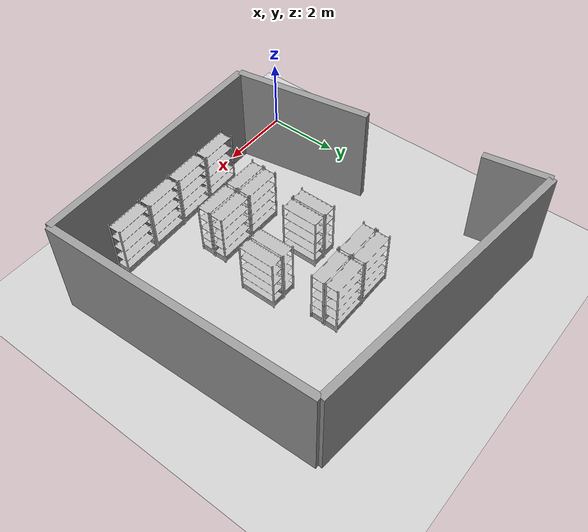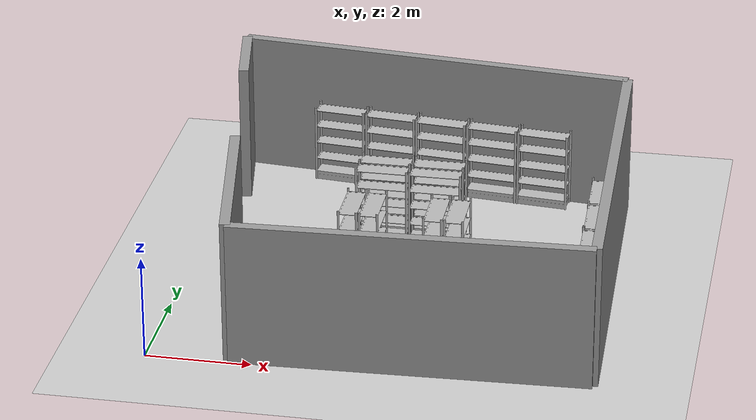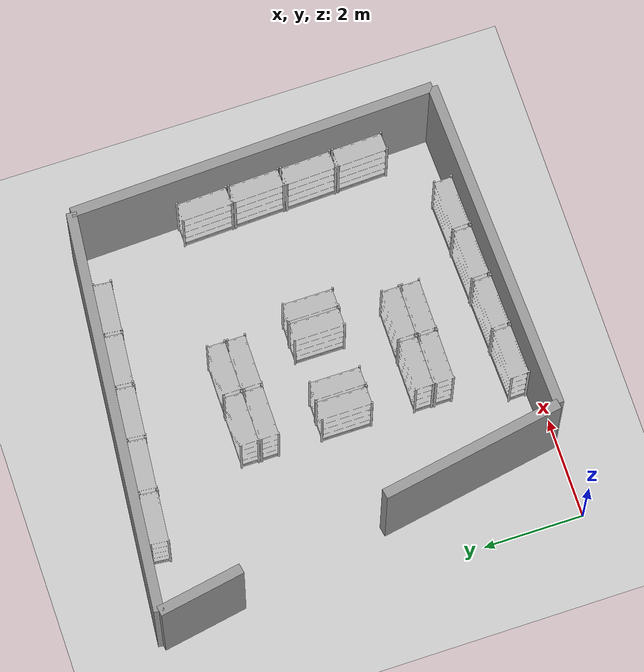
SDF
<sdf version="1.6">
  <world name="default">
    <light name="sun" type="directional">
      <cast_shadows>1</cast_shadows>
      <pose frame="">0 0 10 0 -0 0</pose>
      <diffuse>0.8 0.8 0.8 1</diffuse>
      <specular>0.2 0.2 0.2 1</specular>
      <attenuation>
        <range>1000</range>
        <constant>0.9</constant>
        <linear>0.01</linear>
        <quadratic>0.001</quadratic>
      </attenuation>
      <direction>-0.5 0.1 -0.9</direction>
    </light>
    <model name="ground_plane">
      <static>1</static>
      <link name="link">
        <collision name="collision">
          <geometry>
            <plane>
              <normal>0 0 1</normal>
              <size>100 100</size>
            </plane>
          </geometry>
          <surface>
            <contact>
              <collide_bitmask>65535</collide_bitmask>
              <ode />
            </contact>
            <friction>
              <ode>
                <mu>1000</mu>
                <mu2>1000</mu2>
              </ode>
              <torsional>
                <ode />
              </torsional>
            </friction>
            <bounce />
          </surface>
          <max_contacts>10</max_contacts>
        </collision>
        <visual name="visual">
          <cast_shadows>0</cast_shadows>
          <geometry>
            <plane>
              <normal>0 0 1</normal>
              <size>100 100</size>
            </plane>
          </geometry>
          <material>
            <script>
              <uri>file://media/materials/scripts/gazebo.material</uri>
              <name>Gazebo/Grey</name>
            </script>
          </material>
        </visual>
        <self_collide>0</self_collide>
        <enable_wind>0</enable_wind>
        <kinematic>0</kinematic>
      </link>
    </model>
    <gravity>0 0 -9.8</gravity>
    <magnetic_field>6e-06 2.3e-05 -4.2e-05</magnetic_field>
    <atmosphere type="adiabatic" />
    <physics name="default_physics" default="0" type="ode">
      <max_step_size>0.001</max_step_size>
      <real_time_factor>1</real_time_factor>
      <real_time_update_rate>1000</real_time_update_rate>
    </physics>
    <scene>
      <ambient>0.4 0.4 0.4 1</ambient>
      <background>0.7 0.7 0.7 1</background>
      <shadows>1</shadows>
    </scene>
    <audio>
      <device>default</device>
    </audio>
    <wind />
    <spherical_coordinates>
      <surface_model>EARTH_WGS84</surface_model>
      <latitude_deg>0</latitude_deg>
      <longitude_deg>0</longitude_deg>
      <elevation>0</elevation>
      <heading_deg>0</heading_deg>
    </spherical_coordinates>
    <gui fullscreen="0">
      <camera name="user_camera">
        <pose frame="">5.5458 -17.3868 19.7357 0 0.841797 1.67218</pose>
        <view_controller>orbit</view_controller>
        <projection_type>perspective</projection_type>
      </camera>
    </gui>
    <plugin name="ActorPosesPlugin" filename="libActorPosesPlugin.so" />
    <model name="store_shelf_moduled_0">
      <link name="link">
        <collision name="collision">
          <geometry>
            <mesh>
              <uri>model://store_shelf_moduled/meshes/store_shelf_moduled.dae</uri>
            </mesh>
          </geometry>
        </collision>
        <visual name="visual">
          <geometry>
            <mesh>
              <uri>model://store_shelf_moduled/meshes/store_shelf_moduled.dae</uri>
            </mesh>
          </geometry>
        </visual>
        <inertial>
          <mass>1000</mass>
          <inertia>
            <ixx>840083</ixx>
            <ixy>0</ixy>
            <ixz>0</ixz>
            <iyy>475500</iyy>
            <iyz>0</iyz>
            <izz>1.30208e+06</izz>
          </inertia>
        </inertial>
        <self_collide>0</self_collide>
        <enable_wind>0</enable_wind>
        <kinematic>0</kinematic>
      </link>
      <static>1</static>
      <pose frame="">2.596713 0.229946 0 0 0 0.03287306</pose>
    </model>
    <model name="store_shelf_moduled_1">
      <link name="link">
        <collision name="collision">
          <geometry>
            <mesh>
              <uri>model://store_shelf_moduled/meshes/store_shelf_moduled.dae</uri>
            </mesh>
          </geometry>
        </collision>
        <visual name="visual">
          <geometry>
            <mesh>
              <uri>model://store_shelf_moduled/meshes/store_shelf_moduled.dae</uri>
            </mesh>
          </geometry>
        </visual>
        <inertial>
          <mass>1000</mass>
          <inertia>
            <ixx>840083</ixx>
            <ixy>0</ixy>
            <ixz>0</ixz>
            <iyy>475500</iyy>
            <iyz>0</iyz>
            <izz>1.30208e+06</izz>
          </inertia>
        </inertial>
        <self_collide>0</self_collide>
        <enable_wind>0</enable_wind>
        <kinematic>0</kinematic>
      </link>
      <static>1</static>
      <pose frame="">3.656713 0.259946 0 0 0 0.03287306</pose>
    </model>
    <model name="store_shelf_moduled_2">
      <link name="link">
        <collision name="collision">
          <geometry>
            <mesh>
              <uri>model://store_shelf_moduled/meshes/store_shelf_moduled.dae</uri>
            </mesh>
          </geometry>
        </collision>
        <visual name="visual">
          <geometry>
            <mesh>
              <uri>model://store_shelf_moduled/meshes/store_shelf_moduled.dae</uri>
            </mesh>
          </geometry>
        </visual>
        <inertial>
          <mass>1000</mass>
          <inertia>
            <ixx>840083</ixx>
            <ixy>0</ixy>
            <ixz>0</ixz>
            <iyy>475500</iyy>
            <iyz>0</iyz>
            <izz>1.30208e+06</izz>
          </inertia>
        </inertial>
        <self_collide>0</self_collide>
        <enable_wind>0</enable_wind>
        <kinematic>0</kinematic>
      </link>
      <static>1</static>
      <pose frame="">4.716713 0.299946 0 0 0 0.03287306</pose>
    </model>
    <model name="store_shelf_moduled_3">
      <link name="link">
        <collision name="collision">
          <geometry>
            <mesh>
              <uri>model://store_shelf_moduled/meshes/store_shelf_moduled.dae</uri>
            </mesh>
          </geometry>
        </collision>
        <visual name="visual">
          <geometry>
            <mesh>
              <uri>model://store_shelf_moduled/meshes/store_shelf_moduled.dae</uri>
            </mesh>
          </geometry>
        </visual>
        <inertial>
          <mass>1000</mass>
          <inertia>
            <ixx>840083</ixx>
            <ixy>0</ixy>
            <ixz>0</ixz>
            <iyy>475500</iyy>
            <iyz>0</iyz>
            <izz>1.30208e+06</izz>
          </inertia>
        </inertial>
        <self_collide>0</self_collide>
        <enable_wind>0</enable_wind>
        <kinematic>0</kinematic>
      </link>
      <static>1</static>
      <pose frame="">5.776713 0.329946 0 0 0 0.03287306</pose>
    </model>
    <model name="store_shelf_moduled_4">
      <link name="link">
        <collision name="collision">
          <geometry>
            <mesh>
              <uri>model://store_shelf_moduled/meshes/store_shelf_moduled.dae</uri>
            </mesh>
          </geometry>
        </collision>
        <visual name="visual">
          <geometry>
            <mesh>
              <uri>model://store_shelf_moduled/meshes/store_shelf_moduled.dae</uri>
            </mesh>
          </geometry>
        </visual>
        <inertial>
          <mass>1000</mass>
          <inertia>
            <ixx>840083</ixx>
            <ixy>0</ixy>
            <ixz>0</ixz>
            <iyy>475500</iyy>
            <iyz>0</iyz>
            <izz>1.30208e+06</izz>
          </inertia>
        </inertial>
        <self_collide>0</self_collide>
        <enable_wind>0</enable_wind>
        <kinematic>0</kinematic>
      </link>
      <static>1</static>
      <pose frame="">8.100059 1.366577 0 0 0 1.605029</pose>
    </model>
    <model name="store_shelf_moduled_5">
      <link name="link">
        <collision name="collision">
          <geometry>
            <mesh>
              <uri>model://store_shelf_moduled/meshes/store_shelf_moduled.dae</uri>
            </mesh>
          </geometry>
        </collision>
        <visual name="visual">
          <geometry>
            <mesh>
              <uri>model://store_shelf_moduled/meshes/store_shelf_moduled.dae</uri>
            </mesh>
          </geometry>
        </visual>
        <inertial>
          <mass>1000</mass>
          <inertia>
            <ixx>840083</ixx>
            <ixy>0</ixy>
            <ixz>0</ixz>
            <iyy>475500</iyy>
            <iyz>0</iyz>
            <izz>1.30208e+06</izz>
          </inertia>
        </inertial>
        <self_collide>0</self_collide>
        <enable_wind>0</enable_wind>
        <kinematic>0</kinematic>
      </link>
      <static>1</static>
      <pose frame="">8.060059 2.426577 0 0 0 1.605029</pose>
    </model>
    <model name="store_shelf_moduled_6">
      <link name="link">
        <collision name="collision">
          <geometry>
            <mesh>
              <uri>model://store_shelf_moduled/meshes/store_shelf_moduled.dae</uri>
            </mesh>
          </geometry>
        </collision>
        <visual name="visual">
          <geometry>
            <mesh>
              <uri>model://store_shelf_moduled/meshes/store_shelf_moduled.dae</uri>
            </mesh>
          </geometry>
        </visual>
        <inertial>
          <mass>1000</mass>
          <inertia>
            <ixx>840083</ixx>
            <ixy>0</ixy>
            <ixz>0</ixz>
            <iyy>475500</iyy>
            <iyz>0</iyz>
            <izz>1.30208e+06</izz>
          </inertia>
        </inertial>
        <self_collide>0</self_collide>
        <enable_wind>0</enable_wind>
        <kinematic>0</kinematic>
      </link>
      <static>1</static>
      <pose frame="">8.030059 3.486578 0 0 0 1.605029</pose>
    </model>
    <model name="store_shelf_moduled_7">
      <link name="link">
        <collision name="collision">
          <geometry>
            <mesh>
              <uri>model://store_shelf_moduled/meshes/store_shelf_moduled.dae</uri>
            </mesh>
          </geometry>
        </collision>
        <visual name="visual">
          <geometry>
            <mesh>
              <uri>model://store_shelf_moduled/meshes/store_shelf_moduled.dae</uri>
            </mesh>
          </geometry>
        </visual>
        <inertial>
          <mass>1000</mass>
          <inertia>
            <ixx>840083</ixx>
            <ixy>0</ixy>
            <ixz>0</ixz>
            <iyy>475500</iyy>
            <iyz>0</iyz>
            <izz>1.30208e+06</izz>
          </inertia>
        </inertial>
        <self_collide>0</self_collide>
        <enable_wind>0</enable_wind>
        <kinematic>0</kinematic>
      </link>
      <static>1</static>
      <pose frame="">7.990058 4.546577 0 0 0 1.605029</pose>
    </model>
    <model name="store_shelf_moduled_8">
      <link name="link">
        <collision name="collision">
          <geometry>
            <mesh>
              <uri>model://store_shelf_moduled/meshes/store_shelf_moduled.dae</uri>
            </mesh>
          </geometry>
        </collision>
        <visual name="visual">
          <geometry>
            <mesh>
              <uri>model://store_shelf_moduled/meshes/store_shelf_moduled.dae</uri>
            </mesh>
          </geometry>
        </visual>
        <inertial>
          <mass>1000</mass>
          <inertia>
            <ixx>840083</ixx>
            <ixy>0</ixy>
            <ixz>0</ixz>
            <iyy>475500</iyy>
            <iyz>0</iyz>
            <izz>1.30208e+06</izz>
          </inertia>
        </inertial>
        <self_collide>0</self_collide>
        <enable_wind>0</enable_wind>
        <kinematic>0</kinematic>
      </link>
      <static>1</static>
      <pose frame="">6.920037 7.620497 0 0 0 3.041798</pose>
    </model>
    <model name="store_shelf_moduled_9">
      <link name="link">
        <collision name="collision">
          <geometry>
            <mesh>
              <uri>model://store_shelf_moduled/meshes/store_shelf_moduled.dae</uri>
            </mesh>
          </geometry>
        </collision>
        <visual name="visual">
          <geometry>
            <mesh>
              <uri>model://store_shelf_moduled/meshes/store_shelf_moduled.dae</uri>
            </mesh>
          </geometry>
        </visual>
        <inertial>
          <mass>1000</mass>
          <inertia>
            <ixx>840083</ixx>
            <ixy>0</ixy>
            <ixz>0</ixz>
            <iyy>475500</iyy>
            <iyz>0</iyz>
            <izz>1.30208e+06</izz>
          </inertia>
        </inertial>
        <self_collide>0</self_collide>
        <enable_wind>0</enable_wind>
        <kinematic>0</kinematic>
      </link>
      <static>1</static>
      <pose frame="">5.870037 7.730497 0 0 0 3.041798</pose>
    </model>
    <model name="store_shelf_moduled_10">
      <link name="link">
        <collision name="collision">
          <geometry>
            <mesh>
              <uri>model://store_shelf_moduled/meshes/store_shelf_moduled.dae</uri>
            </mesh>
          </geometry>
        </collision>
        <visual name="visual">
          <geometry>
            <mesh>
              <uri>model://store_shelf_moduled/meshes/store_shelf_moduled.dae</uri>
            </mesh>
          </geometry>
        </visual>
        <inertial>
          <mass>1000</mass>
          <inertia>
            <ixx>840083</ixx>
            <ixy>0</ixy>
            <ixz>0</ixz>
            <iyy>475500</iyy>
            <iyz>0</iyz>
            <izz>1.30208e+06</izz>
          </inertia>
        </inertial>
        <self_collide>0</self_collide>
        <enable_wind>0</enable_wind>
        <kinematic>0</kinematic>
      </link>
      <static>1</static>
      <pose frame="">4.810037 7.830497 0 0 0 3.041798</pose>
    </model>
    <model name="store_shelf_moduled_11">
      <link name="link">
        <collision name="collision">
          <geometry>
            <mesh>
              <uri>model://store_shelf_moduled/meshes/store_shelf_moduled.dae</uri>
            </mesh>
          </geometry>
        </collision>
        <visual name="visual">
          <geometry>
            <mesh>
              <uri>model://store_shelf_moduled/meshes/store_shelf_moduled.dae</uri>
            </mesh>
          </geometry>
        </visual>
        <inertial>
          <mass>1000</mass>
          <inertia>
            <ixx>840083</ixx>
            <ixy>0</ixy>
            <ixz>0</ixz>
            <iyy>475500</iyy>
            <iyz>0</iyz>
            <izz>1.30208e+06</izz>
          </inertia>
        </inertial>
        <self_collide>0</self_collide>
        <enable_wind>0</enable_wind>
        <kinematic>0</kinematic>
      </link>
      <static>1</static>
      <pose frame="">3.760037 7.940497 0 0 0 3.041798</pose>
    </model>
    <model name="store_shelf_moduled_12">
      <link name="link">
        <collision name="collision">
          <geometry>
            <mesh>
              <uri>model://store_shelf_moduled/meshes/store_shelf_moduled.dae</uri>
            </mesh>
          </geometry>
        </collision>
        <visual name="visual">
          <geometry>
            <mesh>
              <uri>model://store_shelf_moduled/meshes/store_shelf_moduled.dae</uri>
            </mesh>
          </geometry>
        </visual>
        <inertial>
          <mass>1000</mass>
          <inertia>
            <ixx>840083</ixx>
            <ixy>0</ixy>
            <ixz>0</ixz>
            <iyy>475500</iyy>
            <iyz>0</iyz>
            <izz>1.30208e+06</izz>
          </inertia>
        </inertial>
        <self_collide>0</self_collide>
        <enable_wind>0</enable_wind>
        <kinematic>0</kinematic>
      </link>
      <static>1</static>
      <pose frame="">2.700037 8.040498 0 0 0 3.041798</pose>
    </model>
    <model name="store_shelf_moduled_13">
      <link name="link">
        <collision name="collision">
          <geometry>
            <mesh>
              <uri>model://store_shelf_moduled/meshes/store_shelf_moduled.dae</uri>
            </mesh>
          </geometry>
        </collision>
        <visual name="visual">
          <geometry>
            <mesh>
              <uri>model://store_shelf_moduled/meshes/store_shelf_moduled.dae</uri>
            </mesh>
          </geometry>
        </visual>
        <inertial>
          <mass>1000</mass>
          <inertia>
            <ixx>840083</ixx>
            <ixy>0</ixy>
            <ixz>0</ixz>
            <iyy>475500</iyy>
            <iyz>0</iyz>
            <izz>1.30208e+06</izz>
          </inertia>
        </inertial>
        <self_collide>0</self_collide>
        <enable_wind>0</enable_wind>
        <kinematic>0</kinematic>
      </link>
      <static>1</static>
      <pose frame="">3.36 3.25 0 0 0 1.570796</pose>
    </model>
    <model name="store_shelf_moduled_14">
      <link name="link">
        <collision name="collision">
          <geometry>
            <mesh>
              <uri>model://store_shelf_moduled/meshes/store_shelf_moduled.dae</uri>
            </mesh>
          </geometry>
        </collision>
        <visual name="visual">
          <geometry>
            <mesh>
              <uri>model://store_shelf_moduled/meshes/store_shelf_moduled.dae</uri>
            </mesh>
          </geometry>
        </visual>
        <inertial>
          <mass>1000</mass>
          <inertia>
            <ixx>840083</ixx>
            <ixy>0</ixy>
            <ixz>0</ixz>
            <iyy>475500</iyy>
            <iyz>0</iyz>
            <izz>1.30208e+06</izz>
          </inertia>
        </inertial>
        <self_collide>0</self_collide>
        <enable_wind>0</enable_wind>
        <kinematic>0</kinematic>
      </link>
      <static>1</static>
      <pose frame="">3.36 4.31 0 0 0 -1.570796</pose>
    </model>
    <model name="store_shelf_moduled_15">
      <link name="link">
        <collision name="collision">
          <geometry>
            <mesh>
              <uri>model://store_shelf_moduled/meshes/store_shelf_moduled.dae</uri>
            </mesh>
          </geometry>
        </collision>
        <visual name="visual">
          <geometry>
            <mesh>
              <uri>model://store_shelf_moduled/meshes/store_shelf_moduled.dae</uri>
            </mesh>
          </geometry>
        </visual>
        <inertial>
          <mass>1000</mass>
          <inertia>
            <ixx>840083</ixx>
            <ixy>0</ixy>
            <ixz>0</ixz>
            <iyy>475500</iyy>
            <iyz>0</iyz>
            <izz>1.30208e+06</izz>
          </inertia>
        </inertial>
        <self_collide>0</self_collide>
        <enable_wind>0</enable_wind>
        <kinematic>0</kinematic>
      </link>
      <static>1</static>
      <pose frame="">2.94 5.53 0 0 0 0</pose>
    </model>
    <model name="store_shelf_moduled_16">
      <link name="link">
        <collision name="collision">
          <geometry>
            <mesh>
              <uri>model://store_shelf_moduled/meshes/store_shelf_moduled.dae</uri>
            </mesh>
          </geometry>
        </collision>
        <visual name="visual">
          <geometry>
            <mesh>
              <uri>model://store_shelf_moduled/meshes/store_shelf_moduled.dae</uri>
            </mesh>
          </geometry>
        </visual>
        <inertial>
          <mass>1000</mass>
          <inertia>
            <ixx>840083</ixx>
            <ixy>0</ixy>
            <ixz>0</ixz>
            <iyy>475500</iyy>
            <iyz>0</iyz>
            <izz>1.30208e+06</izz>
          </inertia>
        </inertial>
        <self_collide>0</self_collide>
        <enable_wind>0</enable_wind>
        <kinematic>0</kinematic>
      </link>
      <static>1</static>
      <pose frame="">4 5.53 0 0 0 -3.141593</pose>
    </model>
    <model name="store_shelf_moduled_17">
      <link name="link">
        <collision name="collision">
          <geometry>
            <mesh>
              <uri>model://store_shelf_moduled/meshes/store_shelf_moduled.dae</uri>
            </mesh>
          </geometry>
        </collision>
        <visual name="visual">
          <geometry>
            <mesh>
              <uri>model://store_shelf_moduled/meshes/store_shelf_moduled.dae</uri>
            </mesh>
          </geometry>
        </visual>
        <inertial>
          <mass>1000</mass>
          <inertia>
            <ixx>840083</ixx>
            <ixy>0</ixy>
            <ixz>0</ixz>
            <iyy>475500</iyy>
            <iyz>0</iyz>
            <izz>1.30208e+06</izz>
          </inertia>
        </inertial>
        <self_collide>0</self_collide>
        <enable_wind>0</enable_wind>
        <kinematic>0</kinematic>
      </link>
      <static>1</static>
      <pose frame="">4 5.53 0 0 0 0</pose>
    </model>
    <model name="store_shelf_moduled_18">
      <link name="link">
        <collision name="collision">
          <geometry>
            <mesh>
              <uri>model://store_shelf_moduled/meshes/store_shelf_moduled.dae</uri>
            </mesh>
          </geometry>
        </collision>
        <visual name="visual">
          <geometry>
            <mesh>
              <uri>model://store_shelf_moduled/meshes/store_shelf_moduled.dae</uri>
            </mesh>
          </geometry>
        </visual>
        <inertial>
          <mass>1000</mass>
          <inertia>
            <ixx>840083</ixx>
            <ixy>0</ixy>
            <ixz>0</ixz>
            <iyy>475500</iyy>
            <iyz>0</iyz>
            <izz>1.30208e+06</izz>
          </inertia>
        </inertial>
        <self_collide>0</self_collide>
        <enable_wind>0</enable_wind>
        <kinematic>0</kinematic>
      </link>
      <static>1</static>
      <pose frame="">5.06 5.53 0 0 0 -3.141593</pose>
    </model>
    <model name="store_shelf_moduled_19">
      <link name="link">
        <collision name="collision">
          <geometry>
            <mesh>
              <uri>model://store_shelf_moduled/meshes/store_shelf_moduled.dae</uri>
            </mesh>
          </geometry>
        </collision>
        <visual name="visual">
          <geometry>
            <mesh>
              <uri>model://store_shelf_moduled/meshes/store_shelf_moduled.dae</uri>
            </mesh>
          </geometry>
        </visual>
        <inertial>
          <mass>1000</mass>
          <inertia>
            <ixx>840083</ixx>
            <ixy>0</ixy>
            <ixz>0</ixz>
            <iyy>475500</iyy>
            <iyz>0</iyz>
            <izz>1.30208e+06</izz>
          </inertia>
        </inertial>
        <self_collide>0</self_collide>
        <enable_wind>0</enable_wind>
        <kinematic>0</kinematic>
      </link>
      <static>1</static>
      <pose frame="">5 3.25 0 0 0 1.570796</pose>
    </model>
    <model name="store_shelf_moduled_20">
      <link name="link">
        <collision name="collision">
          <geometry>
            <mesh>
              <uri>model://store_shelf_moduled/meshes/store_shelf_moduled.dae</uri>
            </mesh>
          </geometry>
        </collision>
        <visual name="visual">
          <geometry>
            <mesh>
              <uri>model://store_shelf_moduled/meshes/store_shelf_moduled.dae</uri>
            </mesh>
          </geometry>
        </visual>
        <inertial>
          <mass>1000</mass>
          <inertia>
            <ixx>840083</ixx>
            <ixy>0</ixy>
            <ixz>0</ixz>
            <iyy>475500</iyy>
            <iyz>0</iyz>
            <izz>1.30208e+06</izz>
          </inertia>
        </inertial>
        <self_collide>0</self_collide>
        <enable_wind>0</enable_wind>
        <kinematic>0</kinematic>
      </link>
      <static>1</static>
      <pose frame="">5 4.31 0 0 0 -1.570796</pose>
    </model>
    <model name="store_shelf_moduled_21">
      <link name="link">
        <collision name="collision">
          <geometry>
            <mesh>
              <uri>model://store_shelf_moduled/meshes/store_shelf_moduled.dae</uri>
            </mesh>
          </geometry>
        </collision>
        <visual name="visual">
          <geometry>
            <mesh>
              <uri>model://store_shelf_moduled/meshes/store_shelf_moduled.dae</uri>
            </mesh>
          </geometry>
        </visual>
        <inertial>
          <mass>1000</mass>
          <inertia>
            <ixx>840083</ixx>
            <ixy>0</ixy>
            <ixz>0</ixz>
            <iyy>475500</iyy>
            <iyz>0</iyz>
            <izz>1.30208e+06</izz>
          </inertia>
        </inertial>
        <self_collide>0</self_collide>
        <enable_wind>0</enable_wind>
        <kinematic>0</kinematic>
      </link>
      <static>1</static>
      <pose frame="">2.94 2.03 0 0 0 0</pose>
    </model>
    <model name="store_shelf_moduled_22">
      <link name="link">
        <collision name="collision">
          <geometry>
            <mesh>
              <uri>model://store_shelf_moduled/meshes/store_shelf_moduled.dae</uri>
            </mesh>
          </geometry>
        </collision>
        <visual name="visual">
          <geometry>
            <mesh>
              <uri>model://store_shelf_moduled/meshes/store_shelf_moduled.dae</uri>
            </mesh>
          </geometry>
        </visual>
        <inertial>
          <mass>1000</mass>
          <inertia>
            <ixx>840083</ixx>
            <ixy>0</ixy>
            <ixz>0</ixz>
            <iyy>475500</iyy>
            <iyz>0</iyz>
            <izz>1.30208e+06</izz>
          </inertia>
        </inertial>
        <self_collide>0</self_collide>
        <enable_wind>0</enable_wind>
        <kinematic>0</kinematic>
      </link>
      <static>1</static>
      <pose frame="">4 2.03 0 0 0 -3.141593</pose>
    </model>
    <model name="store_shelf_moduled_23">
      <link name="link">
        <collision name="collision">
          <geometry>
            <mesh>
              <uri>model://store_shelf_moduled/meshes/store_shelf_moduled.dae</uri>
            </mesh>
          </geometry>
        </collision>
        <visual name="visual">
          <geometry>
            <mesh>
              <uri>model://store_shelf_moduled/meshes/store_shelf_moduled.dae</uri>
            </mesh>
          </geometry>
        </visual>
        <inertial>
          <mass>1000</mass>
          <inertia>
            <ixx>840083</ixx>
            <ixy>0</ixy>
            <ixz>0</ixz>
            <iyy>475500</iyy>
            <iyz>0</iyz>
            <izz>1.30208e+06</izz>
          </inertia>
        </inertial>
        <self_collide>0</self_collide>
        <enable_wind>0</enable_wind>
        <kinematic>0</kinematic>
      </link>
      <static>1</static>
      <pose frame="">4 2.03 0 0 0 0</pose>
    </model>
    <model name="store_shelf_moduled_24">
      <link name="link">
        <collision name="collision">
          <geometry>
            <mesh>
              <uri>model://store_shelf_moduled/meshes/store_shelf_moduled.dae</uri>
            </mesh>
          </geometry>
        </collision>
        <visual name="visual">
          <geometry>
            <mesh>
              <uri>model://store_shelf_moduled/meshes/store_shelf_moduled.dae</uri>
            </mesh>
          </geometry>
        </visual>
        <inertial>
          <mass>1000</mass>
          <inertia>
            <ixx>840083</ixx>
            <ixy>0</ixy>
            <ixz>0</ixz>
            <iyy>475500</iyy>
            <iyz>0</iyz>
            <izz>1.30208e+06</izz>
          </inertia>
        </inertial>
        <self_collide>0</self_collide>
        <enable_wind>0</enable_wind>
        <kinematic>0</kinematic>
      </link>
      <static>1</static>
      <pose frame="">5.06 2.03 0 0 0 -3.141593</pose>
    </model>
    <model name="grey_wall0">
      <static>1</static>
      <link name="link">
        <pose frame="">4.895 0.21 1.4 0 0 0.03287306</pose>
        <visual name="visual">
          <cast_shadows>0</cast_shadows>
          <geometry>
            <box>
              <size>6.693616 0.2 2.8</size>
            </box>
          </geometry>
          <material>
            <name>vrc/grey_wall</name>
            <script>
              <uri>model://grey_wall/materials/scripts</uri>
              <uri>model://grey_wall/materials/textures</uri>
              <name>vrc/grey_wall</name>
            </script>
          </material>
        </visual>
        <collision name="collision">
          <geometry>
            <box>
              <size>6.693616 0.2 2.8</size>
            </box>
          </geometry>
          <max_contacts>5</max_contacts>
        </collision>
      </link>
    </model>
    <model name="grey_wall1">
      <static>1</static>
      <link name="link">
        <pose frame="">8.115 3.97 1.4 0 0 1.605029</pose>
        <visual name="visual">
          <cast_shadows>0</cast_shadows>
          <geometry>
            <box>
              <size>7.30428 0.2 2.8</size>
            </box>
          </geometry>
          <material>
            <name>vrc/grey_wall</name>
            <script>
              <uri>model://grey_wall/materials/scripts</uri>
              <uri>model://grey_wall/materials/textures</uri>
              <name>vrc/grey_wall</name>
            </script>
          </material>
        </visual>
        <collision name="collision">
          <geometry>
            <box>
              <size>7.30428 0.2 2.8</size>
            </box>
          </geometry>
          <max_contacts>5</max_contacts>
        </collision>
      </link>
    </model>
    <model name="grey_wall2">
      <static>1</static>
      <link name="link">
        <pose frame="">4.045 8.015 1.4 0 0 3.041799</pose>
        <visual name="visual">
          <cast_shadows>0</cast_shadows>
          <geometry>
            <box>
              <size>7.929451 0.2 2.8</size>
            </box>
          </geometry>
          <material>
            <name>vrc/grey_wall</name>
            <script>
              <uri>model://grey_wall/materials/scripts</uri>
              <uri>model://grey_wall/materials/textures</uri>
              <name>vrc/grey_wall</name>
            </script>
          </material>
        </visual>
        <collision name="collision">
          <geometry>
            <box>
              <size>7.929451 0.2 2.8</size>
            </box>
          </geometry>
          <max_contacts>5</max_contacts>
        </collision>
      </link>
    </model>
    <model name="grey_wall3">
      <static>1</static>
      <link name="link">
        <pose frame="">0.25 7.56 1.4 0 0 -1.396124</pose>
        <visual name="visual">
          <cast_shadows>0</cast_shadows>
          <geometry>
            <box>
              <size>1.726268 0.2 2.8</size>
            </box>
          </geometry>
          <material>
            <name>vrc/grey_wall</name>
            <script>
              <uri>model://grey_wall/materials/scripts</uri>
              <uri>model://grey_wall/materials/textures</uri>
              <name>vrc/grey_wall</name>
            </script>
          </material>
        </visual>
        <collision name="collision">
          <geometry>
            <box>
              <size>1.726268 0.2 2.8</size>
            </box>
          </geometry>
          <max_contacts>5</max_contacts>
        </collision>
      </link>
    </model>
    <model name="grey_wall4">
      <static>1</static>
      <link name="link">
        <pose frame="">1.23 1.925 1.4 0 0 -1.397218</pose>
        <visual name="visual">
          <cast_shadows>0</cast_shadows>
          <geometry>
            <box>
              <size>3.705685 0.2 2.8</size>
            </box>
          </geometry>
          <material>
            <name>vrc/grey_wall</name>
            <script>
              <uri>model://grey_wall/materials/scripts</uri>
              <uri>model://grey_wall/materials/textures</uri>
              <name>vrc/grey_wall</name>
            </script>
          </material>
        </visual>
        <collision name="collision">
          <geometry>
            <box>
              <size>3.705685 0.2 2.8</size>
            </box>
          </geometry>
          <max_contacts>5</max_contacts>
        </collision>
      </link>
    </model>
  </world>
</sdf>
